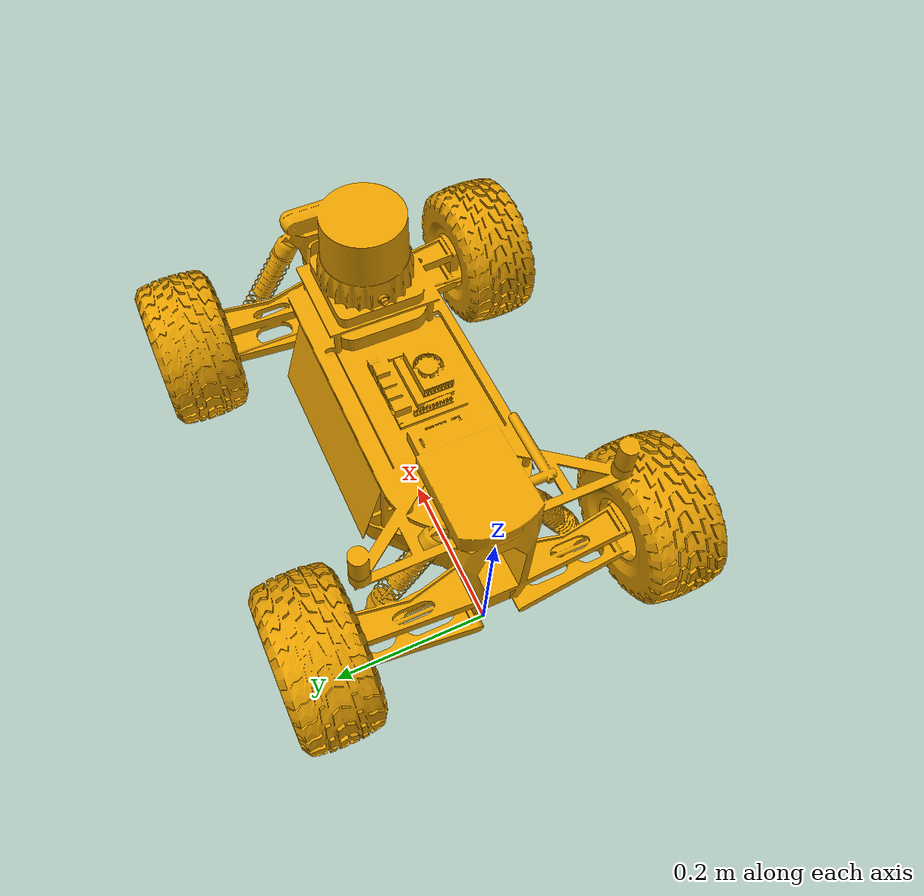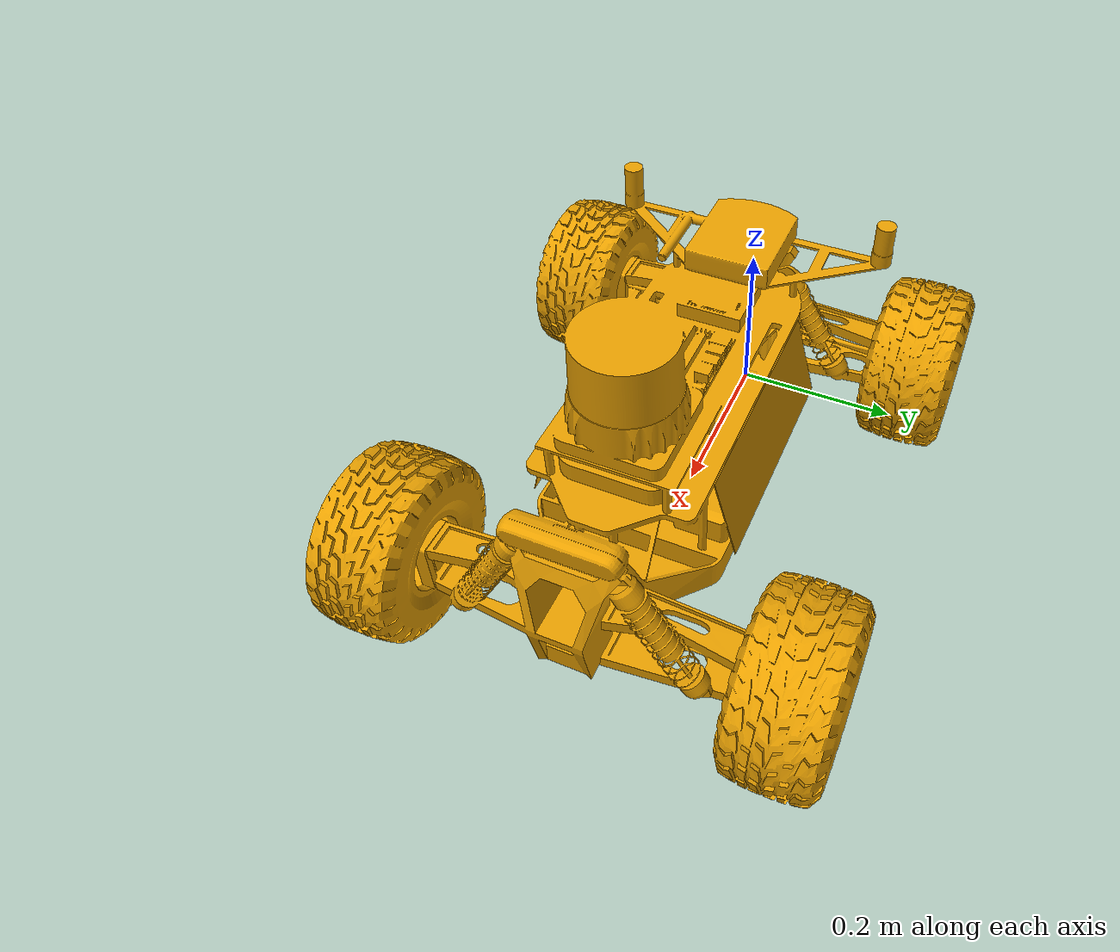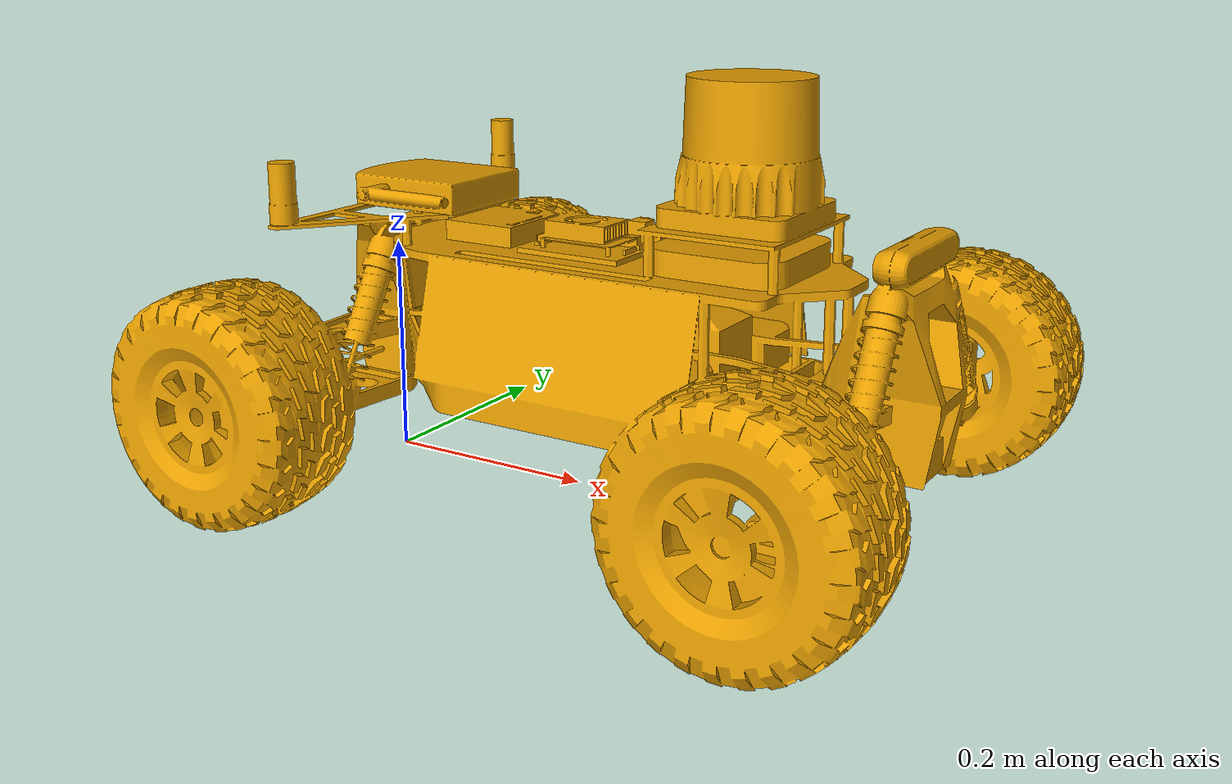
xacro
<?xml version="1.0"?>
<robot xmlns:xacro="http://ros.org/wiki/xacro">
  <!-- load parameter -->
  <xacro:property name="vehicle_info" value="${xacro.load_yaml('$(find roboracer_max_description)/config/vehicle_info.param.yaml')}"/>

  <!-- vehicle body -->
  <link name="base_link">
    <visual>
      <origin xyz="0 0 0" rpy="0 0 0"/>
      <geometry>
        <mesh filename="package://roboracer_max_description/mesh/roboracer_max.stl" scale="1 1 1"/>
      </geometry>
    </visual>
  </link>
</robot>
